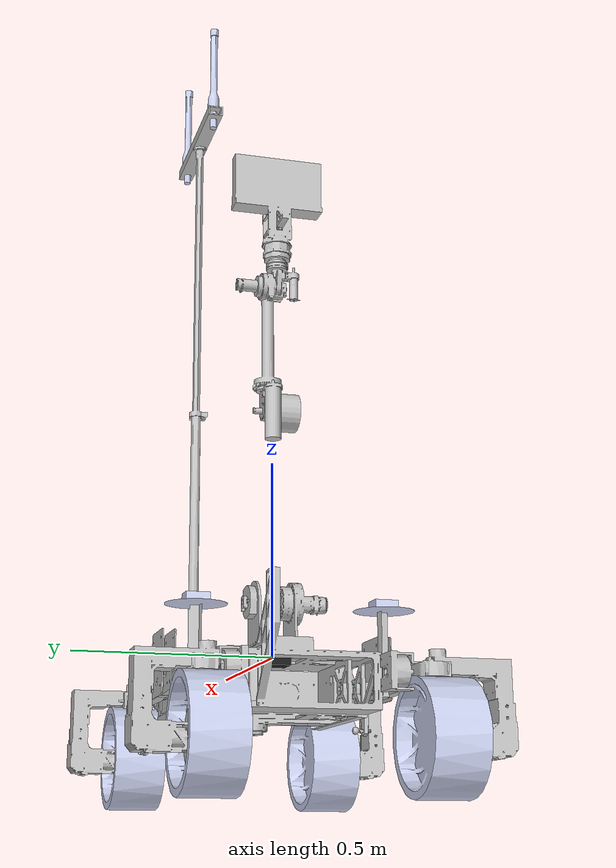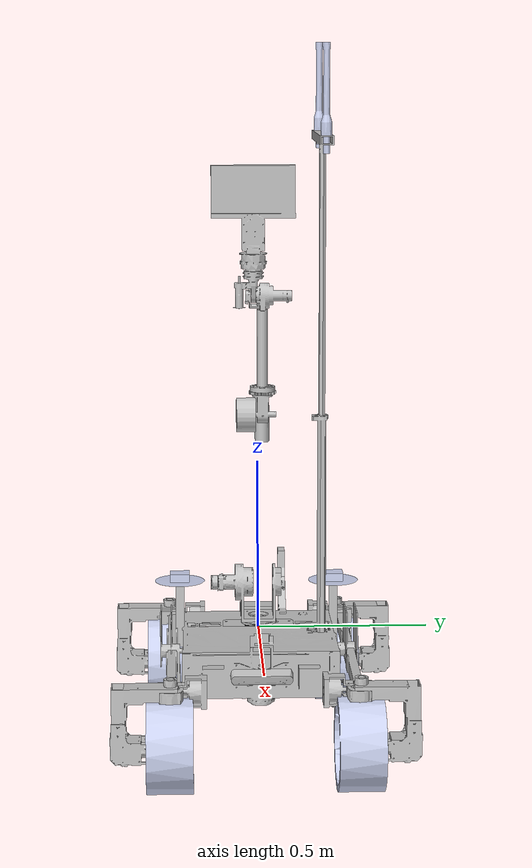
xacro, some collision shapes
<?xml version="1.0" encoding="utf-8"?>
<robot xmlns:xacro="http://www.ros.org/wiki/xacro" name="rover_urdf">
  <xacro:arg name="use_arm" default="true"/>
  <xacro:arg name="use_drive" default="true"/>
  <xacro:arg name="use_gimbal" default="true"/>
  <xacro:arg name="gimbal_mock_hardware" default="false"/>
  <xacro:arg name="gimbal_serial_port" default="/dev/serial/by-id/usb-Pololu_Corporation_Pololu_Mini_Maestro_12-Channel_USB_Servo_Controller_00460938-if00"/>
  <xacro:arg name="gimbal_mount_xyz" default="0 0 0"/>
  <xacro:arg name="gimbal_mount_rpy" default="0 0 0"/>
  <xacro:arg name="mast_camera_xyz" default="0 0 0"/>
  <xacro:arg name="mast_camera_rpy" default="0 0 0"/>
  <link name="base_link"/>
  <xacro:if value="$(arg use_gimbal)">
    <xacro:include filename="$(find rover_urdf)/urdf/gimbal_urdf.xacro"/>
    <xacro:include filename="$(find rover_urdf)/urdf/gimbal_urdf.ros2_control.xacro"/>
    <xacro:gimbal_urdf mount_xyz="$(arg gimbal_mount_xyz)" mount_rpy="$(arg gimbal_mount_rpy)"
      mast_xyz="$(arg mast_camera_xyz)" mast_rpy="$(arg mast_camera_rpy)"/>
    <xacro:gimbal_ros2_control mock="$(arg gimbal_mock_hardware)" serial_port="$(arg gimbal_serial_port)"/>
  </xacro:if>

  <xacro:if value="$(arg use_arm)">
    <!-- Arm geometry -->
    <xacro:include filename="$(find rover_urdf)/urdf/arm_urdf.xacro" />
    <xacro:arm_urdf />

    <!-- Arm ros2_control -->
    <xacro:include filename="$(find rover_urdf)/urdf/arm_urdf.ros2_control.xacro" />
    <xacro:arm_urdf_ros2_control name="ArmSystem"/>

    <!-- Link to base_link -->
    <joint name="base_link_to_arm_base" type="fixed">
      <parent link="base_link"/>
      <child link="Link_1"/>
      <origin xyz="0 0 0.0" rpy="0 0 0"/>
    </joint>
  </xacro:if>

  <xacro:if value="$(arg use_drive)">
    <!-- Chassis ... -->
    <xacro:include filename="$(find rover_urdf)/urdf/chassis_urdf.xacro" />
    <xacro:chassis_urdf />

      <!-- Chassis ros2_control -->
    <xacro:include filename="$(find rover_urdf)/urdf/chassis_urdf.ros2_control.xacro" />
    <xacro:chassis_urdf_ros2_control name="ChassisSystem"/>

    <joint name="base_link_to_chassis" type="fixed">
      <parent link="base_link"/>
      <child link="Frame"/>
      <origin xyz="0 0 0" rpy="0 0 0"/>
    </joint>
  </xacro:if>

</robot>

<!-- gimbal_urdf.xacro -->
<robot xmlns:xacro="http://www.ros.org/wiki/xacro">
  <!-- Mount translations are configurable: CAD measurements are not available in this repository. -->
  <xacro:macro name="camera_body" params="name">
    <link name="${name}">
      <visual><geometry><box size="0.06 0.08 0.04"/></geometry><material name="camera_black"><color rgba="0.1 0.1 0.1 1"/></material></visual>
      <collision><geometry><box size="0.06 0.08 0.04"/></geometry></collision>
      <inertial><mass value="0.1"/><inertia ixx="0.000067" ixy="0" ixz="0" iyy="0.000043" iyz="0" izz="0.000083"/></inertial>
    </link>
    <link name="${name}_optical"/>
    <joint name="${name}_optical_joint" type="fixed">
      <parent link="${name}"/><child link="${name}_optical"/>
      <origin xyz="0 0 0" rpy="${-pi/2} 0 ${-pi/2}"/>
    </joint>
  </xacro:macro>
  <xacro:macro name="gimbal_urdf" params="mount_xyz mount_rpy mast_xyz mast_rpy">
    <link name="gimbal_mount"/>
    <joint name="gimbal_mount_joint" type="fixed">
      <parent link="base_link"/><child link="gimbal_mount"/>
      <origin xyz="${mount_xyz}" rpy="${mount_rpy}"/>
    </joint>
    <link name="gimbal_pan_link"/>
    <joint name="gimbal_pan_joint" type="revolute">
      <parent link="gimbal_mount"/><child link="gimbal_pan_link"/>
      <origin xyz="0 0 0" rpy="0 0 0"/><axis xyz="0 0 1"/>
      <limit lower="-3.10" upper="3.18" effort="1" velocity="0.5"/>
    </joint>
    <xacro:camera_body name="gimbal_camera_link"/>
    <joint name="gimbal_tilt_joint" type="revolute">
      <parent link="gimbal_pan_link"/><child link="gimbal_camera_link"/>
      <origin xyz="0 0 0" rpy="0 0 0"/><axis xyz="0 1 0"/>
      <limit lower="-3.75" upper="2.53" effort="1" velocity="0.5"/>
    </joint>
    <link name="mast_camera_mount"/>
    <joint name="mast_camera_mount_joint" type="fixed">
      <parent link="base_link"/><child link="mast_camera_mount"/>
      <origin xyz="${mast_xyz}" rpy="${mast_rpy}"/>
    </joint>
    <xacro:camera_body name="mast_camera_link"/>
    <joint name="mast_camera_joint" type="revolute">
      <parent link="mast_camera_mount"/><child link="mast_camera_link"/>
      <origin xyz="0 0 0" rpy="0 0 0"/><axis xyz="0 0 1"/>
      <limit lower="-4.2" upper="2.08" effort="1" velocity="0.5"/>
    </joint>
  </xacro:macro>
</robot>

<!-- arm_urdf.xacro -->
<robot xmlns:xacro="http://www.ros.org/wiki/xacro">

  <xacro:macro name="arm_urdf" params="">
    <link
        name="Link_1">
        <inertial>
        <origin
            xyz="-0.0126994071629265 0.0222257343431005 -0.0197570207098757"
            rpy="0 0 0" />
        <mass
            value="0.894465735151454" />
        <inertia
            ixx="0.00132263474307506"
            ixy="-4.08904509356627E-06"
            ixz="-2.17806362830514E-08"
            iyy="0.000957372590197054"
            iyz="-3.71581566948372E-08"
            izz="0.00132572062977347" />
        </inertial>
        <visual>
        <origin
            xyz="0 0 0"
            rpy="0 0 0" />
        <geometry>
            <mesh
            filename="package://rover_urdf/meshes/Link_1.STL" />
        </geometry>
        <material
            name="">
            <color
            rgba="0.752941176470588 0.752941176470588 0.752941176470588 1" />
        </material>
        </visual>
        <collision>
            <origin xyz="-0.028000 0.051000 -0.060000" rpy="0.000000 0.000000 0.000000"/>
            <geometry>
            <cylinder radius="0.020000" length="0.120000"/>
            </geometry>
        </collision>
        <collision>
            <origin xyz="0.000000 0.000000 0.014100" rpy="0.000000 0.000000 0.000000"/>
            <geometry>
            <box size="0.120000 0.212500 0.037300"/>
            </geometry>
        </collision>
    </link>
    <link
        name="Link_2">
        <inertial>
        <origin
            xyz="-4.20856108088868E-06 -0.0230885212719903 0.0757638885361565"
            rpy="0 0 0" />
        <mass
            value="1.06976490829179" />
        <inertia
            ixx="0.00114778086660067"
            ixy="2.48725128684533E-09"
            ixz="-4.35161783538529E-06"
            iyy="0.00187950431086452"
            iyz="-1.86226351623296E-09"
            izz="0.00102016262127672" />
        </inertial>
        <visual>
        <origin
            xyz="0 0 0"
            rpy="0 0 0" />
        <geometry>
            <mesh
            filename="package://rover_urdf/meshes/Link_2.STL" />
        </geometry>
        <material
            name="">
            <color
            rgba="0.752941176470588 0.752941176470588 0.752941176470588 1" />
        </material>
        </visual>
        <collision>
            <origin xyz="0.000000 -0.075000 0.110725" rpy="1.570000 0.000000 0.000000"/>
            <geometry>
            <cylinder radius="0.057833" length="0.122902"/>
            </geometry>
        </collision>
        <collision>
            <origin xyz="0.000000 0.059878 0.110725" rpy="1.570000 0.000000 0.000000"/>
            <geometry>
            <cylinder radius="0.057833" length="0.032902"/>
            </geometry>
        </collision>
        <collision>
            <origin xyz="0.000000 0.000000 0.000725" rpy="0.000000 0.000000 0.000000"/>
            <geometry>
            <box size="0.106750 0.104676 0.020363"/>
            </geometry>
        </collision>
        <collision>
            <origin xyz="0.000000 0.046000 0.040725" rpy="0.000000 0.000000 0.000000"/>
            <geometry>
            <box size="0.106750 0.014676 0.070363"/>
            </geometry>
        </collision>
        <collision>
            <origin xyz="0.000000 -0.046000 0.040725" rpy="0.000000 0.000000 0.000000"/>
            <geometry>
            <box size="0.106750 0.014676 0.070363"/>
            </geometry>
        </collision>
    </link>
    <joint
        name="Joint_1"
        type="revolute">
        <origin
        xyz="0 0 0.0287"
        rpy="0 0 0" />
        <parent
        link="Link_1" />
        <child
        link="Link_2" />
        <axis
        xyz="0 0 -1" />
        <limit lower="-3.2" upper="5.5" effort="100.0" velocity="0.5"/>
    </joint>
    <link
        name="Link_3">
        <inertial>
        <origin
            xyz="0.0133105219503182 0.0134978165230319 0.302186148331124"
            rpy="0 0 0" />
        <mass
            value="2.73505357681468" />
        <inertia
            ixx="0.0200002632227646"
            ixy="-1.48636693159547E-06"
            ixz="-0.000900668714405544"
            iyy="0.0209861108518478"
            iyz="-1.25861593989505E-06"
            izz="0.00178169574785951" />
        </inertial>
        <visual>
        <origin
            xyz="0 0 0"
            rpy="0 0 0" />
        <geometry>
            <mesh
            filename="package://rover_urdf/meshes/Link_3.STL" />
        </geometry>
        <material
            name="">
            <color
            rgba="0.752941176470588 0.752941176470588 0.752941176470588 1" />
        </material>
        </visual>
        <collision>
            <origin xyz="-0.008 -0.034283 0.5" rpy="1.570000 0.000000 0.000000"/>
            <geometry>
            <cylinder radius="0.050000" length="0.055272"/>
            </geometry>
        </collision>
        <collision>
            <origin xyz="-0.008 -0.094283 0.50" rpy="1.570000 0.000000 0.000000"/>
            <geometry>
            <cylinder radius="0.015548" length="0.125272"/>
            </geometry>
        </collision>
        <collision>
            <origin xyz="-0.008 0.065717 0.50" rpy="1.570000 0.000000 0.000000"/>
            <geometry>
            <cylinder radius="0.025548" length="0.045272"/>
            </geometry>
        </collision>
        <collision>
            <origin xyz="-0.008 0.040000 0.50" rpy="1.570000 0.000000 0.000000"/>
            <geometry>
            <cylinder radius="0.045548" length="0.005272"/>
            </geometry>
        </collision>
        <collision>
            <origin xyz="0.000000 0.012000 0.199808" rpy="0.000000 0.000000 0.000000"/>
            <geometry>
            <box size="0.048322 0.060000 0.488954"/>
            </geometry>
        </collision>
        <collision>
            <origin xyz="0.008289 0.045717 -0.000192" rpy="1.570000 0.000000 0.000000"/>
            <geometry>
            <cylinder radius="0.035548" length="0.020000"/>
            </geometry>
        </collision>
        <collision>
            <origin xyz="0.000000 -0.034283 0.199808" rpy="0.000000 0.000000 0.000000"/>
            <geometry>
            <box size="0.058322 0.029363 0.168954"/>
            </geometry>
        </collision>
        <collision>
            <origin xyz="-0.001711 0.055717 0.199808" rpy="0.000000 0.000000 0.000000"/>
            <geometry>
            <box size="0.078322 0.029363 0.238954"/>
            </geometry>
        </collision>
    </link>
    <joint
        name="Joint_2"
        type="revolute">
        <origin
        xyz="0 0 0.10795"
        rpy="0 0 0" />
        <parent
        link="Link_2" />
        <child
        link="Link_3" />
        <axis
        xyz="0 -1 0" />
        <limit lower="-3.14" upper="3.14" effort="100.0" velocity="0.5"/>
    </joint>
    <link
        name="Link_4">
        <inertial>
        <origin
            xyz="-0.01792201238759 0.0119336456139042 0.0235980820711603"
            rpy="0 0 0" />
        <mass
            value="0.592254181279744" />
        <inertia
            ixx="0.0005052936076767"
            ixy="8.31096063015966E-09"
            ixz="4.55868295342229E-07"
            iyy="0.000496814164883247"
            iyz="1.86069451987915E-07"
            izz="0.000304993356864803" />
        </inertial>
        <visual>
        <origin
            xyz="0 0 0"
            rpy="0 0 0" />
        <geometry>
            <mesh
            filename="package://rover_urdf/meshes/Link_4.STL" />
        </geometry>
        <material
            name="">
            <color
            rgba="0.752941176470588 0.752941176470588 0.752941176470588 1" />
        </material>
        </visual>
        <collision>
            <origin xyz="0.000000 0.011650 0.024000" rpy="0.000000 0.000000 0.000000"/>
            <geometry>
            <box size="0.058549 0.030000 0.101500"/>
            </geometry>
        </collision>
        <collision>
            <origin xyz="-0.053000 0.011650 -0.016000" rpy="0.000000 0.000000 0.000000"/>
            <geometry>
            <cylinder radius="0.021000" length="0.145333"/>
            </geometry>
        </collision>
        <collision>
            <origin xyz="0.002098 0.011650 0.070000" rpy="0.000000 0.000000 0.000000"/>
            <geometry>
            <cylinder radius="0.038000" length="0.015333"/>
            </geometry>
        </collision>
    </link>
    <joint
        name="Joint_3"
        type="revolute">
        <origin
        xyz="-0.0084125 0 0.50011"
        rpy="0 0 0" />
        <parent
        link="Link_3" />
        <child
        link="Link_4" />
        <axis
        xyz="0 1 0" />
        <limit lower="0" upper="1.968" effort="100.0" velocity="0.4"/>
    </joint>
    <link
        name="Link_5">
        <inertial>
        <origin
            xyz="-3.32690983248507E-06 0.0047146073162176 0.356210950341734"
            rpy="0 0 0" />
        <mass
            value="0.822677539380202" />
        <inertia
            ixx="0.00299649005940959"
            ixy="-9.15653231578763E-09"
            ixz="-1.30643541690658E-07"
            iyy="0.00317061852966353"
            iyz="1.38462770956105E-06"
            izz="0.000334050583037236" />
        </inertial>
        <visual>
        <origin
            xyz="0 0 0"
            rpy="0 0 0" />
        <geometry>
            <mesh
            filename="package://rover_urdf/meshes/Link_5.STL" />
        </geometry>
        <material
            name="">
            <color
            rgba="0.752941176470588 0.752941176470588 0.752941176470588 1" />
        </material>
        </visual>
        <collision>
            <origin xyz="-0.000000 0.000000 0.211681" rpy="0.000000 0.000000 0.000000"/>
            <geometry>
            <cylinder radius="0.015267" length="0.24"/>
            </geometry>
        </collision>
        <collision>
            <origin xyz="-0.000000 0.000000 0.001681" rpy="0.000000 0.000000 0.000000"/>
            <geometry>
            <cylinder radius="0.035267" length="0.007787"/>
            </geometry>
        </collision>
        <collision>
            <origin xyz="-0.000000 0.049800 0.288" rpy="1.570000 0.000000 0.000000"/>
            <geometry>
            <cylinder radius="0.02" length="0.08"/>
            </geometry>
        </collision>
        <collision>
            <origin xyz="-0.000000 -0.040200 0.271681" rpy="0.000000 0.000000 0.000000"/>
            <geometry>
            <box size="0.022900 0.008300 0.055841"/>
            </geometry>
        </collision>
    </link>
    <joint
        name="Joint_4"
        type="revolute">
        <origin
        xyz="0 0.014035 0.062"
        rpy="0 0 0" />
        <parent
        link="Link_4" />
        <child
        link="Link_5" />
        <axis
        xyz="0 0 -1" />
        <limit lower="-3.14" upper="3.14" effort="100.0" velocity="0.5"/>
    </joint>
    <link
        name="Link_6">
        <inertial>
        <origin
            xyz="-0.0042278717000258 -0.0383496874285328 0.0473063497868793"
            rpy="0 0 0" />
        <mass
            value="0.330260939704627" />
        <inertia
            ixx="8.25792509570999E-05"
            ixy="-4.28114152132045E-08"
            ixz="-2.17436993282634E-07"
            iyy="0.000114504209541654"
            iyz="1.3430165694231E-06"
            izz="8.91268273548946E-05" />
        </inertial>
        <visual>
        <origin
            xyz="0 0 0"
            rpy="0 0 0" />
        <geometry>
            <mesh
            filename="package://rover_urdf/meshes/Link_6.STL" />
        </geometry>
        <material
            name="">
            <color
            rgba="0.752941176470588 0.752941176470588 0.752941176470588 1" />
        </material>
        </visual>
        <collision>
            <origin xyz="-0.02 -0.069000 -0.004" rpy="0.000000 0.000000 0.000000"/>
            <geometry>
            <cylinder radius="0.011667" length="0.065592"/>
            </geometry>
        </collision>
        <collision>
            <origin xyz="-0.02 -0.069000 0.033112" rpy="0.000000 0.000000 0.000000"/>
            <geometry>
            <cylinder radius="0.014000" length="0.009000"/>
            </geometry>
        </collision>
        <collision>
            <origin xyz="0.000000 -0.028000 0.030000" rpy="0.000000 0.000000 0.000000"/>
            <geometry>
            <box size="0.070000 0.015000 0.034194"/>
            </geometry>
        </collision>
        <collision>
            <origin xyz="0.000000 -0.028000 -0.000000" rpy="1.570000 0.000000 0.000000"/>
            <geometry>
            <cylinder radius="0.021667" length="0.015592"/>
            </geometry>
        </collision>
    </link>
    <joint
        name="Joint_5"
        type="revolute">
        <origin
        xyz="0 0 0.28676"
        rpy="0 0 0" />
        <parent
        link="Link_5" />
        <child
        link="Link_6" />
        <axis
        xyz="0 -1 0" />
        <limit lower="-1.0" upper="1.0" effort="100.0" velocity="0.5"/>
    </joint>
    <link
        name="EndEffector">
        <inertial>
        <origin
            xyz="-0.000630328396680646 6.79014782507814E-06 0.229336591537716"
            rpy="0 0 0" />
        <mass
            value="1.73621324847791" />
        <inertia
            ixx="0.00948716478067358"
            ixy="8.38617593065526E-08"
            ixz="-1.89010141585399E-06"
            iyy="0.00305150176009116"
            iyz="7.4271300056518E-09"
            izz="0.006998650748849" />
        </inertial>
        <visual>
        <origin
            xyz="0 0 0"
            rpy="0 0 0" />
        <geometry>
            <mesh
            filename="package://rover_urdf/meshes/EndEffector.STL" />
        </geometry>
        <material
            name="">
            <color
            rgba="0.752941176470588 0.752941176470588 0.752941176470588 1" />
        </material>
        </visual>
        <collision>
            <origin xyz="-0.000000 0.000000 0.270000" rpy="0.000000 0.000000 0.000000"/>
            <geometry>
            <box size="0.032381 0.240516 0.145815"/>
            </geometry>
        </collision>
        <collision>
            <origin xyz="0.000000 0.000000 0.202653" rpy="0.000000 0.000000 0.000000"/>
            <geometry>
            <box size="0.052381 0.240516 0.015815"/>
            </geometry>
        </collision>
        <collision>
            <origin xyz="-0.000000 0.000000 0.152653" rpy="0.000000 0.000000 0.000000"/>
            <geometry>
            <box size="0.062381 0.060516 0.095815"/>
            </geometry>
        </collision>
        <collision>
            <origin xyz="-0.000000 0.000000 0.070000" rpy="0.000000 0.000000 0.000000"/>
            <geometry>
            <cylinder radius="0.041587" length="0.051087"/>
            </geometry>
        </collision>
    </link>
    <joint
        name="Joint_6"
        type="continuous">
        <origin
        xyz="0 -0.02585 0.031336"
        rpy="0 0 0" />
        <parent
        link="Link_6" />
        <child
        link="EndEffector" />
        <axis
        xyz="0 0 1" />
        <limit effort="100.0" velocity="0.5"/>
    </joint>

  </xacro:macro>

</robot>

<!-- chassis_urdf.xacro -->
<robot xmlns:xacro="http://www.ros.org/wiki/xacro">
  <xacro:macro name="chassis_urdf" params="">
  <link
    name="Frame">
    <inertial>
      <origin
        xyz="0.0800957323451785 0.0181716974755963 -0.000830008328684295"
        rpy="0 0 0" />
      <mass
        value="7.54228704048224" />
      <inertia
        ixx="0.0869010721882039"
        ixy="-0.00493257710248312"
        ixz="0.000348785187980346"
        iyy="0.0496973045367091"
        iyz="-2.66470506536873E-06"
        izz="0.0935427889963139" />
    </inertial>
    <visual>
      <origin
        xyz="0 0 0"
        rpy="0 0 0" />
      <geometry>
        <mesh
          filename="package://rover_urdf/meshes/Frame.STL" />
      </geometry>
      <material
        name="">
        <color
          rgba="0.752941176470588 0.752941176470588 0.752941176470588 1" />
      </material>
    </visual>
    <collision>
      <origin xyz="0.077212 0.000738 -0.070000" rpy="0.000000 0.000000 0.000000"/>
      <geometry>
        <box size="0.553312 0.472700 0.190000"/>
      </geometry>
    </collision>
    <collision>
      <origin xyz="-0.262788 0.078500 0.032719" rpy="0.000000 0.000000 0.000000"/>
      <geometry>
        <box size="0.153312 0.032700 0.277297"/>
      </geometry>
    </collision>
    <collision>
      <origin xyz="-0.180000 0.230000 0.000000" rpy="0.000000 0.000000 0.000000"/>
      <geometry>
        <box size="0.030000 0.030000 0.220000"/>
      </geometry>
    </collision>
    <collision>
      <origin xyz="-0.180000 -0.230000 0.000000" rpy="0.000000 0.000000 0.000000"/>
      <geometry>
        <box size="0.030000 0.030000 0.220000"/>
      </geometry>
    </collision>
    <collision>
      <origin xyz="0.360000 0.000000 0.050000" rpy="0.000000 0.000000 0.000000"/>
      <geometry>
        <box size="0.093312 0.072700 0.26"/>
      </geometry>
    </collision>
    <collision>
      <origin xyz="0.360000 -0.140000 -0.050000" rpy="0.000000 0.000000 0.000000"/>
      <geometry>
        <box size="0.043312 0.072700 0.077297"/>
      </geometry>
    </collision>
    <collision>
      <origin xyz="0.360000 0.140000 -0.050000" rpy="0.000000 0.000000 0.000000"/>
      <geometry>
        <box size="0.043312 0.072700 0.077297"/>
      </geometry>
    </collision>
    <collision>
      <origin xyz="0.107212 0.180738 0.722719" rpy="0.000000 0.000000 0.000000"/>
      <geometry>
        <cylinder radius="0.021800" length="1.423063"/>
      </geometry>
    </collision>
    <collision>
      <origin xyz="0.105000 0.180738 1.445000" rpy="0.000000 0.000000 0.000000"/>
      <geometry>
        <box size="0.403312 0.042700 0.030000"/>
      </geometry>
    </collision>
  </link>
  <link
    name="Rocker_Right">
    <inertial>
      <origin
        xyz="-7.79454517596534E-09 -0.0599185039830545 0.0309776992282597"
        rpy="0 0 0" />
      <mass
        value="0.466658290559201" />
      <inertia
        ixx="0.00078110744357765"
        ixy="-1.54065537175771E-11"
        ixz="5.42142969110318E-13"
        iyy="0.00131342318781746"
        iyz="-4.23949324359414E-11"
        izz="0.000539407548341228" />
    </inertial>
    <visual>
      <origin
        xyz="0 0 0"
        rpy="0 0 0" />
      <geometry>
        <mesh
          filename="package://rover_urdf/meshes/Rocker_Right.STL" />
      </geometry>
      <material
        name="">
        <color
          rgba="0.752941176470588 0.752941176470588 0.752941176470588 1" />
      </material>
    </visual>
    <collision>
      <origin xyz="0.000000 -0.041075 0.005650" rpy="0.000000 0.000000 0.000000"/>
      <geometry>
        <box size="0.150000 0.090000 0.240000"/>
      </geometry>
    </collision>
  </link>
  <!-- TODO: This should be switched to revolute with joint limits -->
  <joint
    name="Right_shoulder"
    type="fixed">
    <origin
      xyz="0 -0.20704 -0.07135"
      rpy="0 0.0001756 0" />
    <parent
      link="Frame" />
    <child
      link="Rocker_Right" />
    <axis
      xyz="0 1 0" />
  </joint>
  <link
    name="Sus_Arm_Front_Right">
    <inertial>
      <origin
        xyz="0.57785416680796 -0.285312653930359 0.0825439600785206"
        rpy="0 0 3.14" />
      <mass
        value="1.30155339210532" />
      <inertia
        ixx="0.000635050100779676"
        ixy="5.01413429887482E-06"
        ixz="-4.32135243845773E-07"
        iyy="0.00405405345345966"
        iyz="-5.85963237483261E-06"
        izz="0.00425435187817206" />
    </inertial>
    <visual>
      <origin
        xyz="0 0 0"
        rpy="0 0 3.14" />
      <geometry>
        <mesh
          filename="package://rover_urdf/meshes/Sus_Arm_LB_RF.STL" />
      </geometry>
      <material
        name="">
        <color
          rgba="0.752941176470588 0.752941176470588 0.752941176470588 1" />
      </material>
    </visual>
    <collision>
      <origin xyz="-0.225 0.000000 0.000000" rpy="0.000000 0.000000 0.000000"/>
      <geometry>
        <box size="0.450000 0.090000 0.050000"/>
      </geometry>
    </collision>
    <collision>
      <origin xyz="0.000000 0.000000 0.000000" rpy="0.000000 0.000000 0.000000"/>
      <geometry>
        <box size="0.085000 0.070000 0.090000"/>
      </geometry>
    </collision>
  </link>
  <joint
    name="Right_front_arm_joint"
    type="fixed">
    <origin
      xyz="0.43 -0.05 0"
      rpy="0 0 0" />
    <parent
      link="Rocker_Right" />
    <child
      link="Sus_Arm_Front_Right" />
    <axis
      xyz="0 0 0" />
  </joint>
  <link
    name="Wheel_Arm_Front_Right">
    <inertial>
      <origin
        xyz="-0.664037126098315 -0.188170529908974 -0.095574626273163"
        rpy="0 0 3.14" />
      <mass
        value="1.37511463184065" />
      <inertia
        ixx="0.00128735496986635"
        ixy="-1.71023561850026E-07"
        ixz="-4.51304963957638E-08"
        iyy="0.00166847088701996"
        iyz="-5.79325295972676E-05"
        izz="0.00115431488724209" />
    </inertial>
    <visual>
      <origin
        xyz="0 0 0"
        rpy="0 0 3.14" />
      <geometry>
        <mesh
          filename="package://rover_urdf/meshes/Wheel_Arm.STL" />
      </geometry>
      <material
        name="">
        <color
          rgba="0.752941176470588 0.752941176470588 0.752941176470588 1" />
      </material>
    </visual>
    <collision>
      <origin xyz="0 0 -0.131243" rpy="0 0 0"/>
      <geometry>
        <box size="0.154965 0.097667 0.148371"/>
      </geometry>
    </collision>
    <collision>
      <origin xyz="0 -0.175000 -0.051243" rpy="0 0 0"/>
      <geometry>
        <box size="0.074965 0.049667 0.228371"/>
      </geometry>
    </collision>
    <collision>
      <origin xyz="0 -0.08 0.045000" rpy="0 0 0"/>
      <geometry>
        <box size="0.074965 0.157667 0.068371"/>
      </geometry>
    </collision>
  </link>
  <joint
    name="Right_front_wheel_arm_joint"
    type="continuous">
    <origin
      xyz= "0 0 0"
      rpy="0 0 0" />
    <parent
      link="Sus_Arm_Front_Right" />
    <child
      link="Wheel_Arm_Front_Right" />
    <axis
      xyz="0 0 1" />
  </joint>
  <link
    name="Wheel_Front_Right">
    <inertial>
      <origin
        xyz="-1.5126324665049E-08 -0.0652540478917059 -4.94359794767085E-09"
        rpy="0 0 0" />
      <mass
        value="4.07889519788779" />
      <inertia
        ixx="0.0253877346184538"
        ixy="3.17556071861152E-10"
        ixz="6.01779428304295E-08"
        iyy="0.0442825412456799"
        iyz="4.6564377485832E-09"
        izz="0.0253877201893168" />
    </inertial>
    <visual>
      <origin
        xyz="0 0 0"
        rpy="0 0 0" />
      <geometry>
        <mesh
          filename="package://rover_urdf/meshes/Wheel.STL" />
      </geometry>
      <material
        name="">
        <color
          rgba="0.792156862745098 0.819607843137255 0.933333333333333 1" />
      </material>
    </visual>
    <collision>
      <origin xyz="0.000000  0.000000 0.000000" rpy="1.570000 0.000000 0.000000"/>
      <geometry>
        <cylinder radius="0.141667" length="0.139000"/>
      </geometry>
    </collision>
  </link>
  <joint
    name="Right_front_wheel_joint"
    type="continuous">
    <origin
      xyz="0 0 -0.15"
      rpy="0 0 0" />
    <parent
      link="Wheel_Arm_Front_Right" />
    <child
      link="Wheel_Front_Right" />
    <axis
      xyz="0 -1 0" />
  </joint>
  <link
    name="Sus_Arm_Back_Right">
    <inertial>
      <origin
        xyz="-0.577610105350204 -0.28605209764572 0.0825454788156203"
        rpy="0 0 0" />
      <mass
        value="1.30155333809972" />
      <inertia
        ixx="0.000635051257793654"
        ixy="4.98977414803435E-06"
        ixz="1.41154589066429E-07"
        iyy="0.00405405345341123"
        iyz="-5.80877365251876E-06"
        izz="0.00425435056151195" />
    </inertial>
    <visual>
      <origin
        xyz="0 0 0"
        rpy="0 0 0" />
      <geometry>
        <mesh
          filename="package://rover_urdf/meshes/Sus_Arm_LF_RB.STL" />
      </geometry>
      <material
        name="">
        <color
          rgba="0.752941176470588 0.752941176470588 0.752941176470588 1" />
      </material>
    </visual>
    <collision>
    <origin xyz="0.225 0 0" rpy="0.000000 0.000000 0.000000"/>
      <geometry>
        <box size="0.451125 0.077375 0.060750"/>
      </geometry>
    </collision>
    <collision>
      <origin xyz="0 0 0" rpy="0.000000 0.000000 0.000000"/>
      <geometry>
        <box size="0.081125 0.067375 0.090750"/>
      </geometry>
    </collision>
  </link>
  <joint
    name="Right_back_arm_joint"
    type="fixed">
    <origin
      xyz="-0.43 -0.05 0"
      rpy="0 0 0" />
    <parent
      link="Rocker_Right" />
    <child
      link="Sus_Arm_Back_Right" />
    <axis
      xyz="0 0 0" />
  </joint>
  <link
    name="Wheel_Arm_Back_Right">
    <inertial>
      <origin
        xyz="-0.664037126098314 -0.178170529908975 -0.0955746262731632"
        rpy="0 0 3.14" />
      <mass
        value="1.37511463184065" />
      <inertia
        ixx="0.00128735496986644"
        ixy="-1.71023561850366E-07"
        ixz="-4.5130496445495E-08"
        iyy="0.00166847088702004"
        iyz="-5.79325295972671E-05"
        izz="0.00115431488724208" />
    </inertial>
    <visual>
      <origin
        xyz="0 0 0"
        rpy="0 0 3.14" />
      <geometry>
        <mesh
          filename="package://rover_urdf/meshes/Wheel_Arm.STL" />
      </geometry>
      <material
        name="">
        <color
          rgba="0.752941176470588 0.752941176470588 0.752941176470588 1" />
      </material>
    </visual>
    <collision>
      <origin xyz="0 0 -0.131243" rpy="0 0 0"/>
      <geometry>
        <box size="0.154965 0.097667 0.148371"/>
      </geometry>
    </collision>
    <collision>
      <origin xyz="0 -0.175000 -0.051243" rpy="0 0 0"/>
      <geometry>
        <box size="0.074965 0.049667 0.228371"/>
      </geometry>
    </collision>
    <collision>
      <origin xyz="0 -0.08 0.045000" rpy="0 0 0"/>
      <geometry>
        <box size="0.074965 0.157667 0.068371"/>
      </geometry>
    </collision>
  </link>
  <joint
    name="Right_back_wheel_arm_joint"
    type="continuous">
    <origin
      xyz="0 -0.01 0"
      rpy="0 0 0" />
    <parent
      link="Sus_Arm_Back_Right" />
    <child
      link="Wheel_Arm_Back_Right" />
    <axis
      xyz="0 0 1" />
  </joint>
  <link
    name="Wheel_Back_Right">
    <inertial>
      <origin
        xyz="-1.51263247483158E-08 -0.0652540478917063 -4.94359803093758E-09"
        rpy="0 0 0" />
      <mass
        value="4.07889519788779" />
      <inertia
        ixx="0.0253877346184539"
        ixy="3.17556090144171E-10"
        ixz="6.0177942822157E-08"
        iyy="0.0442825412456799"
        iyz="4.65643774360751E-09"
        izz="0.0253877201893168" />
    </inertial>
    <visual>
      <origin
        xyz="0 0 0"
        rpy="0 0 0" />
      <geometry>
        <mesh
          filename="package://rover_urdf/meshes/Wheel.STL" />
      </geometry>
      <material
        name="">
        <color
          rgba="0.792156862745098 0.819607843137255 0.933333333333333 1" />
      </material>
    </visual>
    <collision>
      <origin xyz="0.000000 0.000000 0.000000" rpy="1.570000 0.000000 0.000000"/>
      <geometry>
        <cylinder radius="0.141667" length="0.139000"/>
      </geometry>
    </collision>
  </link>
  <joint
    name="Right_back_wheel_joint"
    type="continuous">
    <origin
      xyz="0 0 -0.15"
      rpy="0 0 0" />
    <parent
      link="Wheel_Arm_Back_Right" />
    <child
      link="Wheel_Back_Right" />
    <axis
      xyz="0 -1 0" />
  </joint>
  <link
    name="Rocker_Left">
    <inertial>
      <origin
        xyz="7.79453601662539E-09 0.0476985039830719 0.030977699228341"
        rpy="0 0 0" />
      <mass
        value="0.46665829055892" />
      <inertia
        ixx="0.000781107443577619"
        ixy="-1.54065124177074E-11"
        ixz="-5.42083570076205E-13"
        iyy="0.00131342318781745"
        iyz="4.23949257268849E-11"
        izz="0.000539407548341164" />
    </inertial>
    <visual>
      <origin
        xyz="0 0 0"
        rpy="0 0 0" />
      <geometry>
        <mesh
          filename="package://rover_urdf/meshes/Rocker_Left.STL" />
      </geometry>
      <material
        name="">
        <color
          rgba="0.752941176470588 0.752941176470588 0.752941176470588 1" />
      </material>
    </visual>
    <collision>
      <origin xyz="-0.000000 0.028855 0.005650" rpy="0.000000 0.000000 0.000000"/>
      <geometry>
        <box size="0.133500 0.090538 0.249925"/>
      </geometry>
    </collision>
  </link>
  <!-- TODO: This should be switched to revolute with joint limits -->
  <joint
    name="Left_shoulder"
    type="fixed">
    <origin
      xyz="0 0.22074 -0.07135"
      rpy="0 -1.802E-05 0" />
    <parent
      link="Frame" />
    <child
      link="Rocker_Left" />
    <axis
      xyz="0 -1 0" />
  </joint>
  <link
    name="Sus_Arm_Front_Left">
    <inertial>
      <origin
        xyz="0.577627534357114 0.279237097647626 0.082501913006288"
        rpy="0 0 3.14" />
      <mass
        value="1.30155333808383" />
      <inertia
        ixx="0.000635051257839279"
        ixy="4.98977415478763E-06"
        ixz="-1.41154588252225E-07"
        iyy="0.00405405345338918"
        iyz="5.80877363838514E-06"
        izz="0.00425435056152947" />
    </inertial>
    <visual>
      <origin
        xyz="0 0 0"
        rpy="0 0 3.14" />
      <geometry>
        <mesh
          filename="package://rover_urdf/meshes/Sus_Arm_LF_RB.STL" />
      </geometry>
      <material
        name="">
        <color
          rgba="0.752941176470588 0.752941176470588 0.752941176470588 1" />
      </material>
    </visual>
    <collision>
      <origin xyz="-0.225 0.0 0.000000" rpy="0.000000 0.000000 0.000000"/>
      <geometry>
        <box size="0.450000 0.090000 0.050000"/>
      </geometry>
    </collision>
    <collision>
      <origin xyz="0 0.000000 0.000000" rpy="0.000000 0.000000 0.000000"/>
      <geometry>
        <box size="0.085000 0.070000 0.090000"/>
      </geometry>
    </collision>
  </link>
  <joint
    name="Left_front_arm_joint"
    type="fixed">
    <origin
      xyz="0.43 0.05 0"
      rpy="0 0 0" />
    <parent
      link="Rocker_Left" />
    <child
      link="Sus_Arm_Front_Left" />
    <axis
      xyz="0 0 0" />
  </joint>
  <link
    name="Wheel_Arm_Front_Left">
    <inertial>
      <origin
        xyz="0.664037126098315 0.178170529908974 -0.0955746262731632"
        rpy="0 0 0" />
      <mass
        value="1.37511463184065" />
      <inertia
        ixx="0.00128735496986635"
        ixy="-1.71023561850106E-07"
        ixz="4.513049637557E-08"
        iyy="0.00166847088701983"
        iyz="5.79325295972682E-05"
        izz="0.00115431488724196" />
    </inertial>
    <visual>
      <origin
        xyz="0 0 0"
        rpy="0 0 0" />
      <geometry>
        <mesh
          filename="package://rover_urdf/meshes/Wheel_Arm.STL" />
      </geometry>
      <material
        name="">
        <color
          rgba="0.752941176470588 0.752941176470588 0.752941176470588 1" />
      </material>
    </visual>
    <collision>
      <origin xyz="0.000000 0.1 -0.131243" rpy="0.000000 0.000000 0.000000"/>
      <geometry>
        <box size="0.154965 0.097667 0.148371"/>
      </geometry>
    </collision>
    <collision>
      <origin xyz="0.000000 0.14 -0.051243" rpy="0.000000 0.000000 0.000000"/>
      <geometry>
        <box size="0.074965 0.049667 0.228371"/>
      </geometry>
    </collision>
    <collision>
      <origin xyz="0.000000 0.05 0.045000" rpy="0.000000 0.000000 0.000000"/>
      <geometry>
        <box size="0.074965 0.157667 0.068371"/>
      </geometry>
    </collision>
  </link>
  <joint
    name="Left_front_wheel_arm_joint"
    type="continuous">
    <origin
      xyz="1.7429E-05 0.003185 -4.3566E-05"
      rpy="0 0 0" />
    <parent
      link="Sus_Arm_Front_Left" />
    <child
      link="Wheel_Arm_Front_Left" />
    <axis
      xyz="0 0 1" />
  </joint>
  <link
    name="Wheel_Front_Left">
    <inertial>
      <origin
        xyz="-1.51271036530343E-08 0.0652540478917061 4.94121440985928E-09"
        rpy="0 0 0" />
      <mass
        value="4.07889519788779" />
      <inertia
        ixx="0.0253877346374189"
        ixy="-3.18289813015833E-10"
        ixz="-6.01756661291818E-08"
        iyy="0.0442825412456799"
        iyz="4.65638765389284E-09"
        izz="0.0253877201703517" />
    </inertial>
    <visual>
      <origin
        xyz="0 0 0"
        rpy="0 0 0" />
      <geometry>
        <mesh
          filename="package://rover_urdf/meshes/Wheel.STL" />
      </geometry>
      <material
        name="">
        <color
          rgba="0.792156862745098 0.819607843137255 0.933333333333333 1" />
      </material>
    </visual>
    <collision>
      <origin xyz="0.000000 0.000000 0.000000" rpy="1.570000 0.000000 0.000000"/>
      <geometry>
        <cylinder radius="0.141667" length="0.139000"/>
      </geometry>
    </collision>
  </link>
  <joint
    name="Left_front_wheel_joint"
    type="continuous">
    <origin
      xyz="0 0 -0.15"
      rpy="0 0 0" />
    <parent
      link="Wheel_Arm_Front_Left" />
    <child
      link="Wheel_Front_Left" />
    <axis
      xyz="0 -1 0" />
  </joint>
  <link
    name="Sus_Arm_Back_Left">
    <inertial>
      <origin
        xyz="-0.577836729367699 0.298497653931114 0.082587522513042"
        rpy="0 0 0" />
      <mass
        value="1.30155339215341" />
      <inertia
        ixx="0.000635050100768571"
        ixy="5.01413429404503E-06"
        ixz="4.32135245332308E-07"
        iyy="0.00405405345349003"
        iyz="5.85963236124216E-06"
        izz="0.00425435187819251" />
    </inertial>
    <visual>
      <origin
        xyz="0 0 0"
        rpy="0 0 0" />
      <geometry>
        <mesh
          filename="package://rover_urdf/meshes/Sus_Arm_LB_RF.STL" />
      </geometry>
      <material
        name="">
        <color
          rgba="0.752941176470588 0.752941176470588 0.752941176470588 1" />
      </material>
    </visual>
    <collision>
    <origin xyz="0.225 0.000000 0.000000" rpy="0.000000 0.000000 0.000000"/>
      <geometry>
        <box size="0.451125 0.077375 0.060750"/>
      </geometry>
    </collision>
    <collision>
      <origin xyz="0.0 0.000000 0.000000" rpy="0.000000 0.000000 0.000000"/>
      <geometry>
        <box size="0.081125 0.067375 0.090750"/>
      </geometry>
    </collision>
  </link>
  <joint
    name="Left_back_arm_joint"
    type="fixed">
    <origin
      xyz="-0.43 0.05 0"
      rpy="0 0 0" />
    <parent
      link="Rocker_Left" />
    <child
      link="Sus_Arm_Back_Left" />
    <axis
      xyz="0 0 0" />
  </joint>
  <link
    name="Wheel_Arm_Back_Left">
    <inertial>
      <origin
        xyz="0.664037126098315 0.188170529908974 -0.0955746262731639"
        rpy="0 0 0" />
      <mass
        value="1.37511463184065" />
      <inertia
        ixx="0.00128735496986684"
        ixy="-1.71023561850264E-07"
        ixz="4.51304967548788E-08"
        iyy="0.00166847088702042"
        iyz="5.79325295972644E-05"
        izz="0.00115431488724205" />
    </inertial>
    <visual>
      <origin
        xyz="0 0 0"
        rpy="0 0 0" />
      <geometry>
        <mesh
          filename="package://rover_urdf/meshes/Wheel_Arm.STL" />
      </geometry>
      <material
        name="">
        <color
          rgba="0.752941176470588 0.752941176470588 0.752941176470588 1" />
      </material>
    </visual>
    <collision>
      <origin xyz="0.000000 0.1 -0.131243" rpy="0.000000 0.000000 0.000000"/>
      <geometry>
        <box size="0.154965 0.097667 0.148371"/>
      </geometry>
    </collision>
    <collision>
      <origin xyz="0.000000 0.14 -0.051243" rpy="0.000000 0.000000 0.000000"/>
      <geometry>
        <box size="0.074965 0.049667 0.228371"/>
      </geometry>
    </collision>
    <collision>
      <origin xyz="0.000000 0.05 0.045000" rpy="0.000000 0.000000 0.000000"/>
      <geometry>
        <box size="0.074965 0.157667 0.068371"/>
      </geometry>
    </collision>
  </link>
  <joint
    name="Left_back_wheel_arm_joint"
    type="continuous">
    <origin
      xyz="0 -0.01 0"
      rpy="0 0 0" />
    <parent
      link="Sus_Arm_Back_Left" />
    <child
      link="Wheel_Arm_Back_Left" />
    <axis
      xyz="0 0 1" />
  </joint>
  <link
    name="Wheel_Back_Left">
    <inertial>
      <origin
        xyz="-1.51271036807898E-08 0.0652540478917061 4.94121440985928E-09"
        rpy="0 0 0" />
      <mass
        value="4.07889519788779" />
      <inertia
        ixx="0.0253877346374189"
        ixy="-3.182898207594E-10"
        ixz="-6.01756661385619E-08"
        iyy="0.04428254124568"
        iyz="4.65638765996186E-09"
        izz="0.0253877201703518" />
    </inertial>
    <visual>
      <origin
        xyz="0 0 0"
        rpy="0 0 0" />
      <geometry>
        <mesh
          filename="package://rover_urdf/meshes/Wheel.STL" />
      </geometry>
      <material
        name="">
        <color
          rgba="0.792156862745098 0.819607843137255 0.933333333333333 1" />
      </material>
    </visual>
    <collision>
      <origin xyz="0.000000 0.000000 0.000000" rpy="1.570000 0.000000 0.000000"/>
      <geometry>
        <cylinder radius="0.141667" length="0.139000"/>
      </geometry>
    </collision>
  </link>
  <joint
    name="Left_back_wheel_joint"
    type="continuous">
    <origin
      xyz="0.0 0.0 -0.15"
      rpy="0 0 0" />
    <parent
      link="Wheel_Arm_Back_Left" />
    <child
      link="Wheel_Back_Left" />
    <axis
      xyz="0 -1 0" />
  </joint>
  <link
    name="Zed">
    <inertial>
      <origin
        xyz="0.0306563640490988 -0.00896759508661651 -0.0111101689314073"
        rpy="0 0 0" />
      <mass
        value="0.170322709852802" />
      <inertia
        ixx="0.000383424533024289"
        ixy="3.53918528634825E-09"
        ixz="1.86256816970885E-06"
        iyy="3.25740538043786E-05"
        iyz="4.69462665493872E-10"
        izz="0.000390134804932486" />
    </inertial>
    <visual>
      <origin
        xyz="0 0 0"
        rpy="0 0 0" />
      <geometry>
        <mesh
          filename="package://rover_urdf/meshes/Zed.STL" />
      </geometry>
      <material
        name="">
        <color
          rgba="0.752941176470588 0.752941176470588 0.752941176470588 1" />
      </material>
    </visual>
    <collision>
      <origin xyz="0.028925 -0.008976 -0.010367" rpy="0.000000 0.290000 0.000000"/>
      <geometry>
        <box size="0.050000 0.183799 0.032000"/>
      </geometry>
    </collision>
  </link>
  <joint
    name="Zed_mount_joint"
    type="fixed">
    <origin
      xyz="0.36578 0.0072063 -0.0243"
      rpy="0 0 0" />
    <parent
      link="Frame" />
    <child
      link="Zed" />
    <axis
      xyz="0 0 0" />
  </joint>
  <link
    name="GPS_Right">
    <inertial>
      <origin
        xyz="-1.11022302462516E-16 -5.55111512312578E-17 0.0109498681042847"
        rpy="0 0 0" />
      <mass
        value="0.100302140748761" />
      <inertia
        ixx="6.13488467528573E-05"
        ixy="-2.55772032670663E-12"
        ixz="5.88317367687464E-21"
        iyy="5.63469436411297E-05"
        iyz="2.81433252708947E-20"
        izz="0.000103222402805233" />
    </inertial>
    <visual>
      <origin
        xyz="0 0 0"
        rpy="0 0 0" />
      <geometry>
        <mesh
          filename="package://rover_urdf/meshes/GPS.STL" />
      </geometry>
      <material
        name="">
        <color
          rgba="0.792156862745098 0.819607843137255 0.933333333333333 1" />
      </material>
    </visual>
    <collision>
      <origin xyz="0.000000 0.000000 0.000000" rpy="0.000000 0.000000 0.000000"/>
      <geometry>
        <cylinder radius="0.080000" length="0.010000"/>
      </geometry>
    </collision>
    <collision>
      <origin xyz="0.000000 0.000000 0.013335" rpy="0.000000 0.000000 0.000000"/>
      <geometry>
        <box size="0.037470 0.037500 0.020000"/>
      </geometry>
    </collision>
  </link>
  <joint
    name="Right_gps_joint"
    type="fixed">
    <origin
      xyz="-0.1773 -0.23196 0.09651"
      rpy="0 0 0" />
    <parent
      link="Frame" />
    <child
      link="GPS_Right" />
    <axis
      xyz="0 0 0" />
  </joint>
  <link
    name="GPS_Left">
    <inertial>
      <origin
        xyz="0 6.93889390390723E-18 0.0109498681042847"
        rpy="0 0 0" />
      <mass
        value="0.100302140748761" />
      <inertia
        ixx="6.13488467528573E-05"
        ixy="-2.55772032699891E-12"
        ixz="-9.38973606700713E-21"
        iyy="5.63469436411297E-05"
        iyz="-4.27329022581811E-21"
        izz="0.000103222402805233" />
    </inertial>
    <visual>
      <origin
        xyz="0 0 0"
        rpy="0 0 0" />
      <geometry>
        <mesh
          filename="package://rover_urdf/meshes/GPS.STL" />
      </geometry>
      <material
        name="">
        <color
          rgba="0.792156862745098 0.819607843137255 0.933333333333333 1" />
      </material>
    </visual>
    <collision>
      <origin xyz="0.000000 0.000000 0.000000" rpy="0.000000 0.000000 0.000000"/>
      <geometry>
        <cylinder radius="0.080000" length="0.010000"/>
      </geometry>
    </collision>
    <collision>
      <origin xyz="0.000000 0.000000 0.013335" rpy="0.000000 0.000000 0.000000"/>
      <geometry>
        <box size="0.037470 0.037500 0.020000"/>
      </geometry>
    </collision>
  </link>
  <joint
    name="Left_gps_joint"
    type="fixed">
    <origin
      xyz="-0.1773 0.23344 0.095208"
      rpy="0 0 0" />
    <parent
      link="Frame" />
    <child
      link="GPS_Left" />
    <axis
      xyz="0 0 0" />
  </joint>
  <link
    name="Antenna_Front">
    <inertial>
      <origin
        xyz="-5.27355936696949E-16 1.38777878078145E-16 0.13714331261652"
        rpy="0 0 0" />
      <mass
        value="0.104399900997282" />
      <inertia
        ixx="0.000769132724700505"
        ixy="-5.88401142398206E-22"
        ixz="2.7963785641302E-18"
        iyy="0.000769132724700505"
        iyz="-8.05172962173959E-19"
        izz="7.06095050498019E-06" />
    </inertial>
    <visual>
      <origin
        xyz="0 0 0"
        rpy="0 0 0" />
      <geometry>
        <mesh
          filename="package://rover_urdf/meshes/Antenna.STL" />
      </geometry>
      <material
        name="">
        <color
          rgba="0.792156862745098 0.819607843137255 0.933333333333333 1" />
      </material>
    </visual>
    <collision>
      <origin xyz="0.000042 -0.000128 0.150000" rpy="0.000000 0.000000 0.000000"/>
      <geometry>
        <cylinder radius="0.020000" length="0.300000"/>
      </geometry>
    </collision>
  </link>
  <joint
    name="Front_antenna_joint"
    type="fixed">
    <origin
      xyz="0.275000018562033 0.18073782630944 1.40731289579837"
      rpy="0 0 0" />
    <parent
      link="Frame" />
    <child
      link="Antenna_Front" />
    <axis
      xyz="0 0 1" />
  </joint>
  <link
    name="Antenna_Back">
    <inertial>
      <origin
        xyz="-5.55111512312578E-16 8.32667268468867E-17 0.13714331261652"
        rpy="0 0 0" />
      <mass
        value="0.104399900997282" />
      <inertia
        ixx="0.000769132724700505"
        ixy="-1.06099699903673E-21"
        ixz="2.79509711477536E-18"
        iyy="0.000769132724700505"
        iyz="-8.10403874686085E-19"
        izz="7.06095050498019E-06" />
    </inertial>
    <visual>
      <origin
        xyz="0 0 0"
        rpy="0 0 0" />
      <geometry>
        <mesh
          filename="package://rover_urdf/meshes/Antenna.STL" />
      </geometry>
      <material
        name="">
        <color
          rgba="0.792156862745098 0.819607843137255 0.933333333333333 1" />
      </material>
    </visual>
    <collision>
      <origin xyz="0.000042 -0.000128 0.150000" rpy="0.000000 0.000000 0.000000"/>
      <geometry>
        <cylinder radius="0.020000" length="0.300000"/>
      </geometry>
    </collision>
  </link>
  <joint
    name="Back_antenna_joint"
    type="fixed">
    <origin
      xyz="-0.065 0.18074 1.4073"
      rpy="0 0 0" />
    <parent
      link="Frame" />
    <child
      link="Antenna_Back" />
    <axis
      xyz="0 0 1" />
  </joint>
  </xacro:macro>

</robot>
